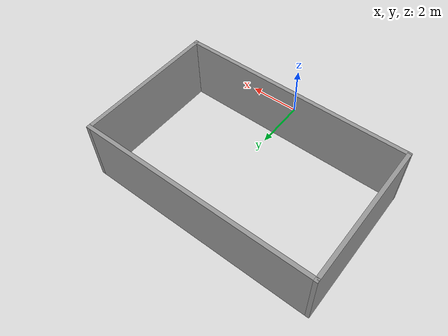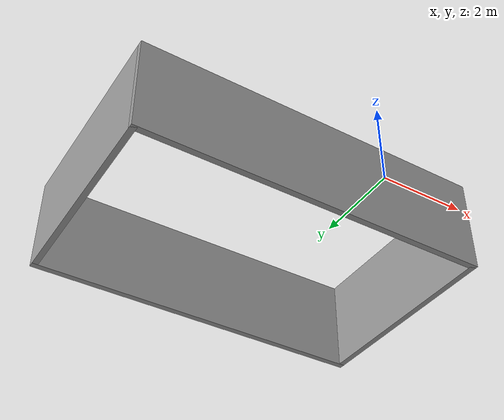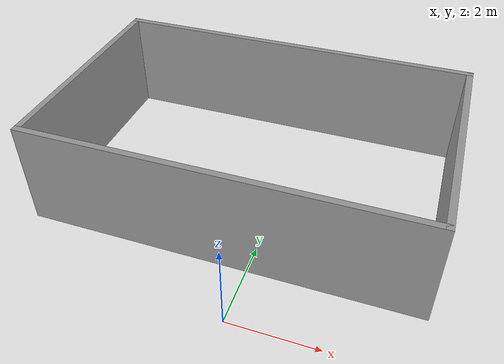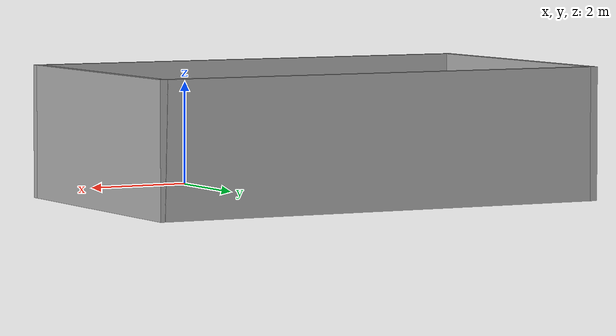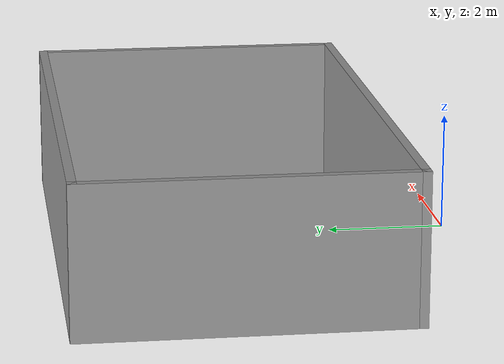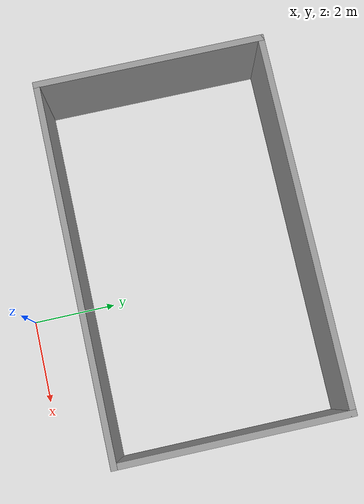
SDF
<?xml version='1.0'?>
<sdf version='1.7'>
  <model name='207'>
    <pose>-0.696164 3.42121 0 0 -0 0</pose>
    <link name='Wall_12'>
      <collision name='Wall_12_Collision'>
        <geometry>
          <box>
            <size>5.5 0.15 2.5</size>
          </box>
        </geometry>
        <pose>0 0 1.25 0 -0 0</pose>
      </collision>
      <visual name='Wall_12_Visual'>
        <pose>0 0 1.25 0 -0 0</pose>
        <geometry>
          <box>
            <size>5.5 0.15 2.5</size>
          </box>
        </geometry>
        <material>
          <script>
            <uri>file://media/materials/scripts/gazebo.material</uri>
            <name>Gazebo/Grey</name>
          </script>
          <ambient>1 1 1 1</ambient>
        </material>
        <meta>
          <layer>0</layer>
        </meta>
      </visual>
      <pose>-4.425 0.671205 0 0 -0 1.5708</pose>
    </link>
    <link name='Wall_13'>
      <collision name='Wall_13_Collision'>
        <geometry>
          <box>
            <size>9 0.15 2.5</size>
          </box>
        </geometry>
        <pose>0 0 1.25 0 -0 0</pose>
      </collision>
      <visual name='Wall_13_Visual'>
        <pose>0 0 1.25 0 -0 0</pose>
        <geometry>
          <box>
            <size>9 0.15 2.5</size>
          </box>
        </geometry>
        <material>
          <script>
            <uri>file://media/materials/scripts/gazebo.material</uri>
            <name>Gazebo/Grey</name>
          </script>
          <ambient>1 1 1 1</ambient>
        </material>
        <meta>
          <layer>0</layer>
        </meta>
      </visual>
      <pose>0 3.3462 0 0 -0 0</pose>
    </link>
    <link name='Wall_15'>
      <collision name='Wall_15_Collision'>
        <geometry>
          <box>
            <size>5.5 0.15 2.5</size>
          </box>
        </geometry>
        <pose>0 0 1.25 0 -0 0</pose>
      </collision>
      <visual name='Wall_15_Visual'>
        <pose>0 0 1.25 0 -0 0</pose>
        <geometry>
          <box>
            <size>5.5 0.15 2.5</size>
          </box>
        </geometry>
        <material>
          <script>
            <uri>file://media/materials/scripts/gazebo.material</uri>
            <name>Gazebo/Grey</name>
          </script>
          <ambient>1 1 1 1</ambient>
        </material>
        <meta>
          <layer>0</layer>
        </meta>
      </visual>
      <pose>4.425 0.671205 0 0 -0 -1.5708</pose>
    </link>
    <link name='Wall_17'>
      <collision name='Wall_17_Collision'>
        <geometry>
          <box>
            <size>9 0.15 2.5</size>
          </box>
        </geometry>
        <pose>0 0 1.25 0 -0 0</pose>
      </collision>
      <visual name='Wall_17_Visual'>
        <pose>0 0 1.25 0 -0 0</pose>
        <geometry>
          <box>
            <size>9 0.15 2.5</size>
          </box>
        </geometry>
        <material>
          <script>
            <uri>file://media/materials/scripts/gazebo.material</uri>
            <name>Gazebo/Grey</name>
          </script>
          <ambient>1 1 1 1</ambient>
        </material>
        <meta>
          <layer>0</layer>
        </meta>
      </visual>
      <pose>0 -2.0038 0 0 -0 0</pose>
    </link>
    <static>1</static>
  </model>
</sdf>
